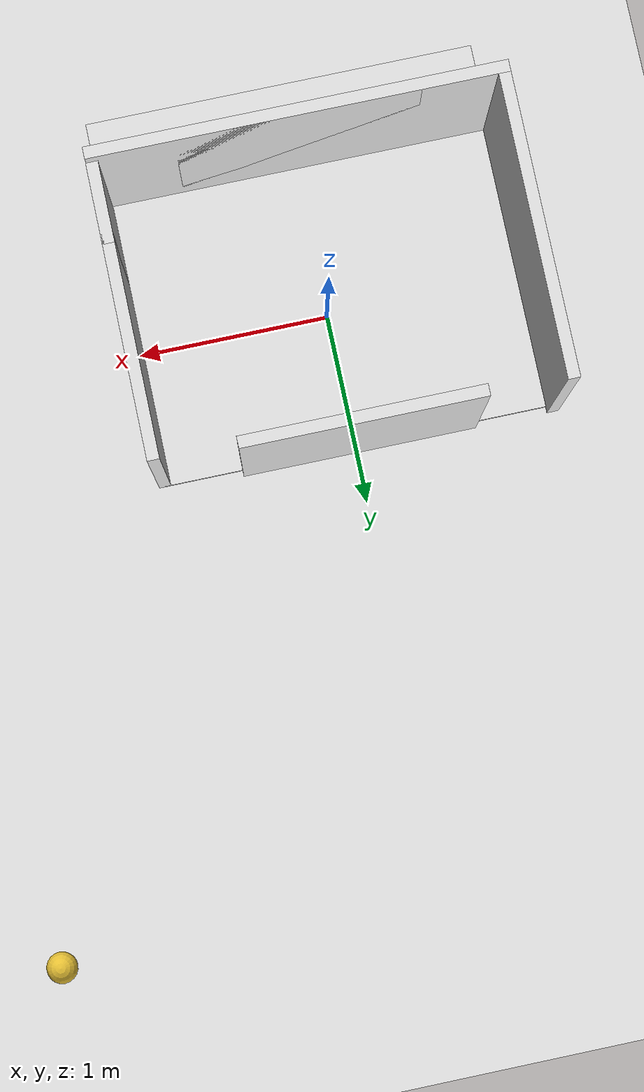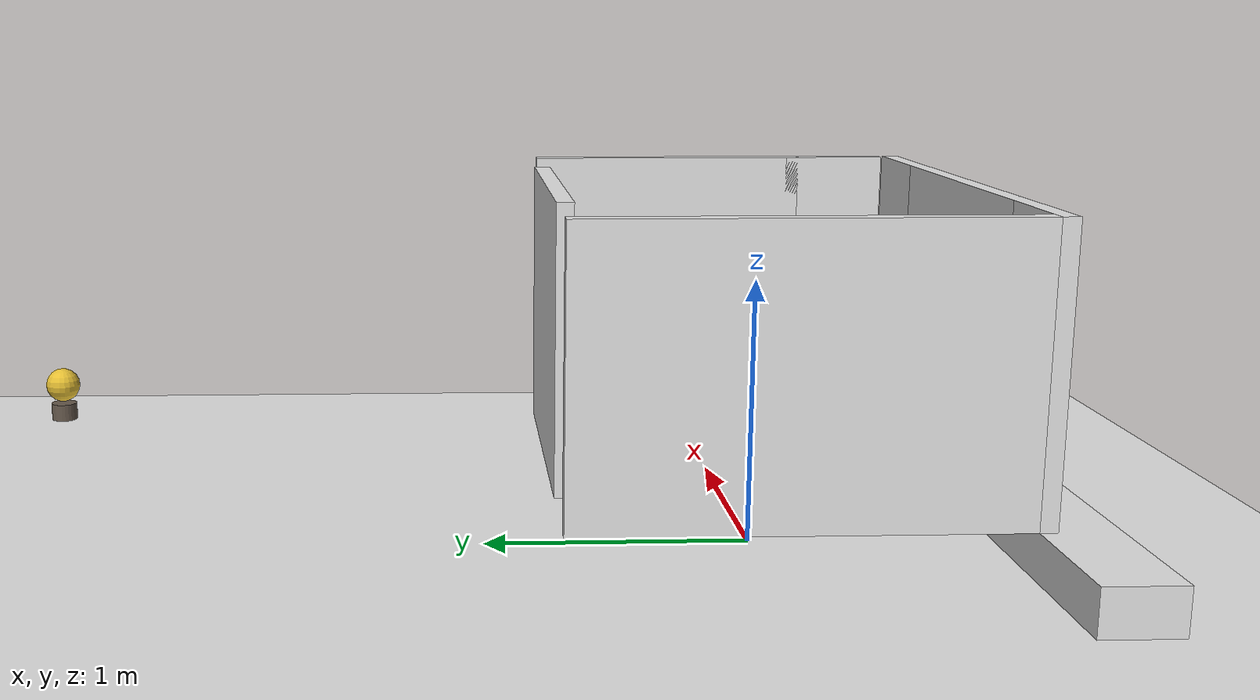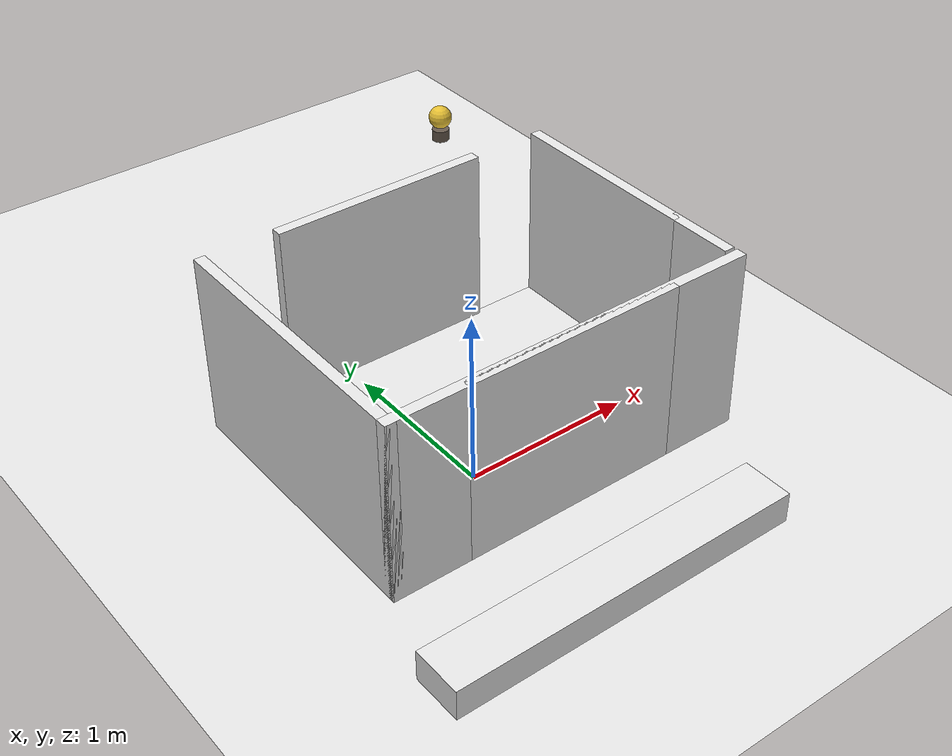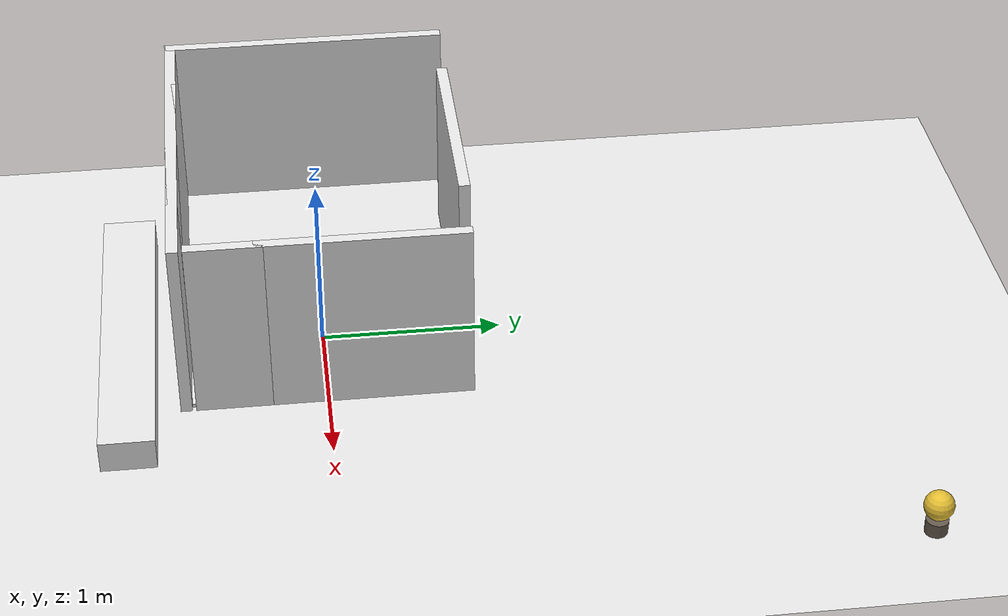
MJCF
<mujoco model="kindergarten">
  <compiler angle="radian" coordinate="local" inertiafromgeom="true"/>
  <option timestep="0.002" gravity="0 0 -9.81" integrator="implicit">
    <flag contact="enable"/>
  </option>
  <default>
    <joint armature="0.01" damping="1"/>
    <geom condim="3" friction="0.8 0.4 0.4" margin="0.001" rgba="0.9 0.9 0.9 1"/>
  </default>
  <asset>
    <texture name="floor_tex" type="2d" builtin="checker" rgb1="0.85 0.85 0.85" rgb2="0.7 0.7 0.7" width="64" height="64"/>
    <material name="floor_mat" texture="floor_tex" texrepeat="8 12" reflectance="0.1"/>
    <material name="crib_mat" rgba="0.95 0.95 0.9 1"/>
    <material name="charging_mat" rgba="0.3 0.7 0.4 0.6"/>
    <material name="pen_mat" rgba="0.88 0.88 0.92 1"/>
    <material name="fence_mat" rgba="0.6 0.55 0.5 1"/>
  </asset>
  <worldbody>
    <light name="main" pos="0 0 3" dir="0 0 -1" diffuse="1 1 1" specular="0.2 0.2 0.2"/>
    <!-- Play yard: 5m x 8m, center at origin -->
    <geom name="play_yard" type="plane" pos="0 0 0" size="2.5 4 0.01" material="floor_mat"/>
    <!-- Play pen floor: 2m (x) x 1.5m (y), top at z=0.36 -->
    <body name="play_pen" pos="0 0 0.37">
      <geom name="pen_floor" type="box" size="1 0.75 0.01" pos="0 0 0" material="pen_mat"/>
    </body>
    <!-- Fence around play pen: 1m high from pen floor (z 0.36 to 1.36). Four sides with gate gaps (north middle, east near south). -->
    <body name="fence_n1" pos="0 -0.75 0.86"><geom name="fence_n1" type="box" size="0.6 0.03 0.5" material="fence_mat"/></body>
    <body name="fence_n2" pos="0 0.75 0.86"><geom name="fence_n2" type="box" size="0.6 0.03 0.5" material="fence_mat"/></body>
    <body name="fence_s" pos="0 0 0.86"><geom name="fence_s" type="box" size="1.03 0.03 0.5" pos="0 -0.75 0" material="fence_mat"/></body>
    <body name="fence_e1" pos="1 0.2 0.86"><geom name="fence_e1" type="box" size="0.03 0.55 0.5" material="fence_mat"/></body>
    <body name="fence_e2" pos="1 -0.5 0.86"><geom name="fence_e2" type="box" size="0.03 0.2 0.5" material="fence_mat"/></body>
    <body name="fence_w" pos="-1 0 0.86"><geom name="fence_w" type="box" size="0.03 0.78 0.5" material="fence_mat"/></body>
    <!-- Crib: 0.6m (x) x 0.8m (y), floor at z=0.18 (18cm below pen floor) -->
    <body name="crib" pos="0 0 0.19">
      <geom name="crib_floor" type="box" size="0.3 0.4 0.01" pos="0 0 0" material="crib_mat"/>
      <!-- Two charging pads 10x10cm, non-symmetric -->
      <geom name="charging_pad_1" type="box" size="0.05 0.05 0.005" pos="-0.12 -0.15 0.005" material="charging_mat" contype="0" conaffinity="0"/>
      <geom name="charging_pad_2" type="box" size="0.05 0.05 0.005" pos="0.12 0.15 0.005" material="charging_mat" contype="0" conaffinity="0"/>
      <site name="charging_zone_1" pos="-0.12 -0.15 0.02" size="0.08" rgba="0.2 0.8 0.3 0.4"/>
      <site name="charging_zone_2" pos="0.12 0.15 0.02" size="0.08" rgba="0.2 0.8 0.3 0.4"/>
    </body>
    <!-- Crib east ramp: from pen floor (0.36) to crib floor (0.18), 36cm run -->
    <body name="crib_ramp" pos="0.12 0 0.27">
      <geom name="ramp" type="box" size="0.18 0.4 0.01" euler="0 -0.46 0" material="pen_mat"/>
    </body>
    <!-- Terrace: one step down from pen (simplified; full spec is 2 steps 18cm/30cm) -->
    <body name="terrace_step1" pos="0 -1.08 0.09"><geom name="terrace1" type="box" size="1.03 0.15 0.09" material="pen_mat"/></body>
    <!-- Sound flower in yard -->
    <body name="sound_flower" pos="2 3 0">
      <geom name="flower_base" type="cylinder" size="0.06 0.04" pos="0 0 0.04" rgba="0.4 0.35 0.3 1"/>
      <body name="flower_head" pos="0 0 0.12">
        <joint name="flower_hinge" type="hinge" axis="0 0 1" damping="0.1"/>
        <geom name="flower_head_geom" type="sphere" size="0.08" pos="0 0 0.05" rgba="0.9 0.75 0.2 1"/>
        <site name="flower_anchor" pos="0 0 0.08" size="0.03" rgba="0.9 0.7 0.2 0.5"/>
      </body>
    </body>
  </worldbody>
  <actuator>
    <motor name="flower_motor" joint="flower_hinge" ctrlrange="-1 1" gear="5"/>
  </actuator>
</mujoco>
